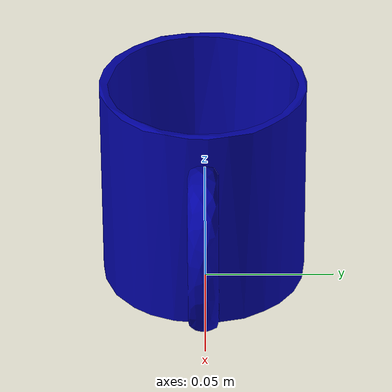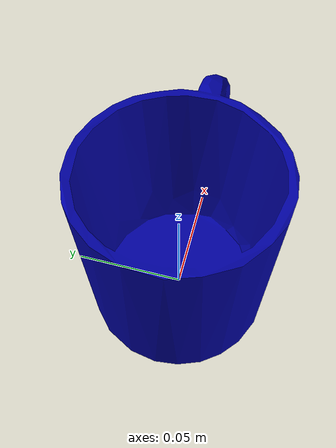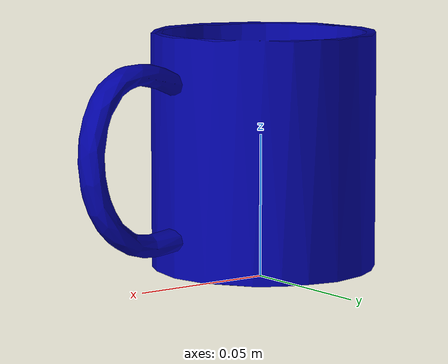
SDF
<?xml version="1.0" ?>
<sdf version="1.5">
	<model name="Cup">
		<link name="Obj_1">
			<pose>0 0 0.01 1.57 0 0</pose>
			<inertial>
				<mass>11.517146110534668</mass>
				<pose>0.016391828656196594 0.03499368578195572 0.0005457252264022827 0.0003556840238161385 0.0007357799913734198 0.0001756824494805187</pose>
				<inertia>
					<ixx>0.077557806968688965</ixx>
					<ixy>0.0</ixy>
					<ixz>0.0</ixz>
					<iyy>0.11491321563720703</iyy>
					<iyz>0.0</iyz>
					<izz>0.11905232429504395</izz>
				</inertia>
			</inertial>
			<collision name="COL_Obj_1_Cup">
				<pose>-0.0016019195318222046 -0.0062777698040008545 0.0005717352032661438 0.00035545119317248464 0.0007355937268584967 0.00017555439262650907</pose>
				<geometry>
					<mesh>
						<uri>model://cup/meshes/collisions/COL_Obj_1_Cup_Coll.dae</uri>
						<scale>0.03999999910593033 0.03999999910593033 0.03999999910593033</scale>
					</mesh>
				</geometry>
			</collision>
			<visual name="VIS_Obj_1_Cup">
				<pose>-0.0016019195318222046 -0.0062777698040008545 0.0005717352032661438 0.00035545119317248464 0.0007355937268584967 0.00017555439262650907</pose>
				<geometry>
					<mesh>
						<uri>model://cup/meshes/visual/VIS_Obj_1_Cup.dae</uri>
						<scale>0.03999999910593033 0.03999999910593033 0.03999999910593033</scale>
					</mesh>
				</geometry>
			</visual>
		</link>
	</model>
</sdf>
